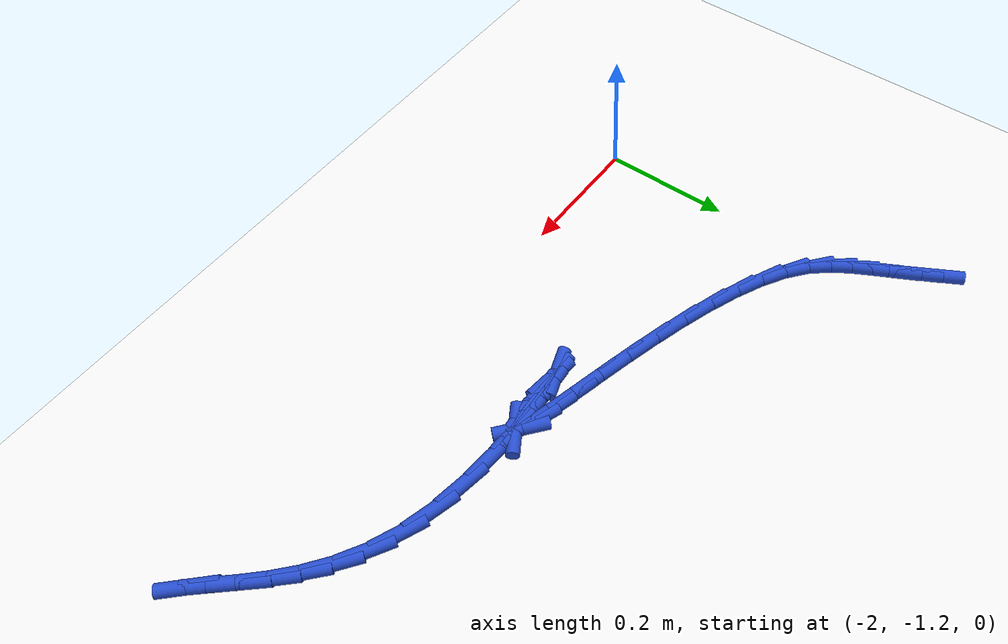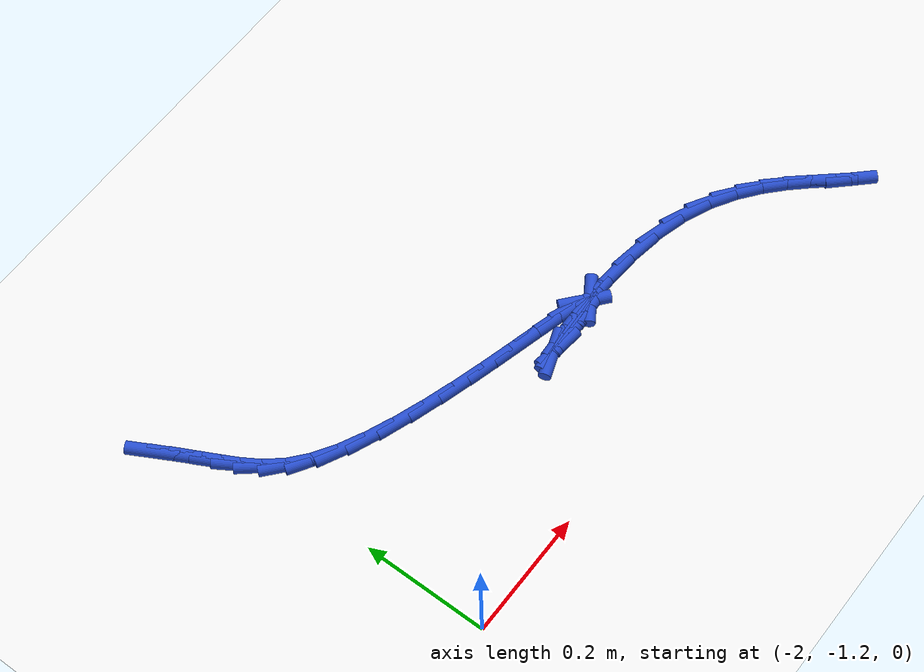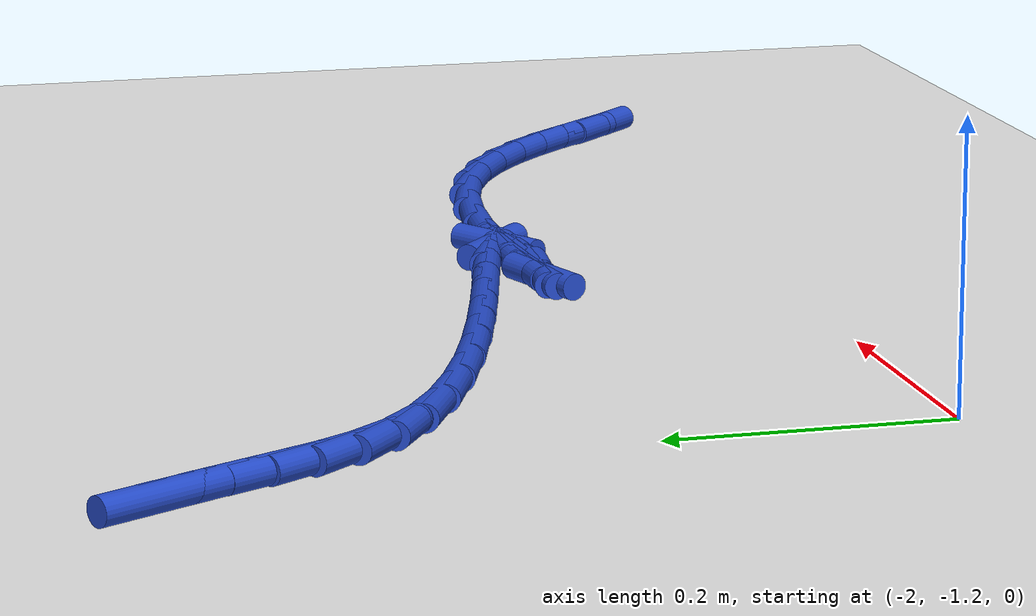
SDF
<sdf version="1.6">
 <world name="default">
  <model name="ground_plane">
   <static>1</static>
   <link name="link">
    <collision name="collision">
     <geometry><plane><normal>0 0 1</normal><size>100 100</size></plane></geometry>
     <surface><friction><ode><mu>100</mu><mu2>50</mu2></ode></friction></surface>
    </collision>
    <visual name="visual">
     <cast_shadows>0</cast_shadows>
     <geometry><plane><normal>0 0 1</normal><size>100 100</size></plane></geometry>
     <material>
      <script><uri>file://media/materials/scripts/gazebo.material</uri><name>Gazebo/WhiteGlow</name></script>
     </material>
    </visual>
   </link>
  </model>
  <model name="line">
   <link name="link_139">
    <pose>-2.0698029384900893 -0.6654449189479454 0.01 0 1.57 -1.0803497767880526</pose>
    <collision name="collision">
     <geometry><cylinder><radius>0.01</radius><length>0.08</length></cylinder></geometry>
    </collision>
    <visual name="visual">
     <material>
      <script><name>Gazebo/Blue</name><uri>file://media/materials/scripts/gazebo.material</uri></script>
     </material>
     <geometry><cylinder><radius>0.01</radius><length>0.08</length></cylinder></geometry>
    </visual>
   </link>
   <link name="link_140">
    <pose>-2.054865075860134 -0.6934204416251377 0.01 0 1.57 -1.0900580672086133</pose>
    <collision name="collision">
     <geometry><cylinder><radius>0.01</radius><length>0.08</length></cylinder></geometry>
    </collision>
    <visual name="visual">
     <material>
      <script><name>Gazebo/Blue</name><uri>file://media/materials/scripts/gazebo.material</uri></script>
     </material>
     <geometry><cylinder><radius>0.01</radius><length>0.08</length></cylinder></geometry>
    </visual>
   </link>
   <link name="link_141">
    <pose>-2.040311194592604 -0.7213255198770969 0.01 0 1.57 -1.1029298830065584</pose>
    <collision name="collision">
     <geometry><cylinder><radius>0.01</radius><length>0.08</length></cylinder></geometry>
    </collision>
    <visual name="visual">
     <material>
      <script><name>Gazebo/Blue</name><uri>file://media/materials/scripts/gazebo.material</uri></script>
     </material>
     <geometry><cylinder><radius>0.01</radius><length>0.08</length></cylinder></geometry>
    </visual>
   </link>
   <link name="link_142">
    <pose>-2.0262279021502865 -0.7491975132593244 0.01 0 1.57 -1.0913267215518248</pose>
    <collision name="collision">
     <geometry><cylinder><radius>0.01</radius><length>0.08</length></cylinder></geometry>
    </collision>
    <visual name="visual">
     <material>
      <script><name>Gazebo/Blue</name><uri>file://media/materials/scripts/gazebo.material</uri></script>
     </material>
     <geometry><cylinder><radius>0.01</radius><length>0.08</length></cylinder></geometry>
    </visual>
   </link>
   <link name="link_143">
    <pose>-2.011832112746434 -0.7768850845186759 0.01 0 1.57 -1.0151110667225822</pose>
    <collision name="collision">
     <geometry><cylinder><radius>0.01</radius><length>0.08</length></cylinder></geometry>
    </collision>
    <visual name="visual">
     <material>
      <script><name>Gazebo/Blue</name><uri>file://media/materials/scripts/gazebo.material</uri></script>
     </material>
     <geometry><cylinder><radius>0.01</radius><length>0.08</length></cylinder></geometry>
    </visual>
   </link>
   <link name="link_144">
    <pose>-1.9950251197276583 -0.8039514469529594 0.01 0 1.57 -0.88124678732448</pose>
    <collision name="collision">
     <geometry><cylinder><radius>0.01</radius><length>0.08</length></cylinder></geometry>
    </collision>
    <visual name="visual">
     <material>
      <script><name>Gazebo/Blue</name><uri>file://media/materials/scripts/gazebo.material</uri></script>
     </material>
     <geometry><cylinder><radius>0.01</radius><length>0.08</length></cylinder></geometry>
    </visual>
   </link>
   <link name="link_145">
    <pose>-1.9735987490649582 -0.8299360627909248 0.01 0 1.57 -0.7135313456483213</pose>
    <collision name="collision">
     <geometry><cylinder><radius>0.01</radius><length>0.08</length></cylinder></geometry>
    </collision>
    <visual name="visual">
     <material>
      <script><name>Gazebo/Blue</name><uri>file://media/materials/scripts/gazebo.material</uri></script>
     </material>
     <geometry><cylinder><radius>0.01</radius><length>0.08</length></cylinder></geometry>
    </visual>
   </link>
   <link name="link_146">
    <pose>-1.9453616587670233 -0.8543805631895226 0.01 0 1.57 -0.5626125583309765</pose>
    <collision name="collision">
     <geometry><cylinder><radius>0.01</radius><length>0.08</length></cylinder></geometry>
    </collision>
    <visual name="visual">
     <material>
      <script><name>Gazebo/Blue</name><uri>file://media/materials/scripts/gazebo.material</uri></script>
     </material>
     <geometry><cylinder><radius>0.01</radius><length>0.08</length></cylinder></geometry>
    </visual>
   </link>
   <link name="link_147">
    <pose>-1.9094877096200553 -0.8770024954281223 0.01 0 1.57 -0.46033689835174857</pose>
    <collision name="collision">
     <geometry><cylinder><radius>0.01</radius><length>0.08</length></cylinder></geometry>
    </collision>
    <visual name="visual">
     <material>
      <script><name>Gazebo/Blue</name><uri>file://media/materials/scripts/gazebo.material</uri></script>
     </material>
     <geometry><cylinder><radius>0.01</radius><length>0.08</length></cylinder></geometry>
    </visual>
   </link>
   <link name="link_148">
    <pose>-1.8675012045326556 -0.8978222780305356 0.01 0 1.57 -0.39034498056059747</pose>
    <collision name="collision">
     <geometry><cylinder><radius>0.01</radius><length>0.08</length></cylinder></geometry>
    </collision>
    <visual name="visual">
     <material>
      <script><name>Gazebo/Blue</name><uri>file://media/materials/scripts/gazebo.material</uri></script>
     </material>
     <geometry><cylinder><radius>0.01</radius><length>0.08</length></cylinder></geometry>
    </visual>
   </link>
   <link name="link_149">
    <pose>-1.821158748984036 -0.9168902633649263 0.01 0 1.57 -0.3409806790470598</pose>
    <collision name="collision">
     <geometry><cylinder><radius>0.01</radius><length>0.08</length></cylinder></geometry>
    </collision>
    <visual name="visual">
     <material>
      <script><name>Gazebo/Blue</name><uri>file://media/materials/scripts/gazebo.material</uri></script>
     </material>
     <geometry><cylinder><radius>0.01</radius><length>0.08</length></cylinder></geometry>
    </visual>
   </link>
   <link name="link_150">
    <pose>-1.7722169484534103 -0.9342568037994589 0.01 0 1.57 -0.30576953650660055</pose>
    <collision name="collision">
     <geometry><cylinder><radius>0.01</radius><length>0.08</length></cylinder></geometry>
    </collision>
    <visual name="visual">
     <material>
      <script><name>Gazebo/Blue</name><uri>file://media/materials/scripts/gazebo.material</uri></script>
     </material>
     <geometry><cylinder><radius>0.01</radius><length>0.08</length></cylinder></geometry>
    </visual>
   </link>
   <link name="link_151">
    <pose>-1.7224324084199911 -0.9499722517022965 0.01 0 1.57 -0.281166345391388</pose>
    <collision name="collision">
     <geometry><cylinder><radius>0.01</radius><length>0.08</length></cylinder></geometry>
    </collision>
    <visual name="visual">
     <material>
      <script><name>Gazebo/Blue</name><uri>file://media/materials/scripts/gazebo.material</uri></script>
     </material>
     <geometry><cylinder><radius>0.01</radius><length>0.08</length></cylinder></geometry>
    </visual>
   </link>
   <link name="link_152">
    <pose>-1.673561734362992 -0.9640869594416037 0.01 0 1.57 -0.26553196888436553</pose>
    <collision name="collision">
     <geometry><cylinder><radius>0.01</radius><length>0.08</length></cylinder></geometry>
    </collision>
    <visual name="visual">
     <material>
      <script><name>Gazebo/Blue</name><uri>file://media/materials/scripts/gazebo.material</uri></script>
     </material>
     <geometry><cylinder><radius>0.01</radius><length>0.08</length></cylinder></geometry>
    </visual>
   </link>
   <link name="link_153">
    <pose>-1.6273615317616261 -0.9766512793855443 0.01 0 1.57 -0.25892060433528985</pose>
    <collision name="collision">
     <geometry><cylinder><radius>0.01</radius><length>0.08</length></cylinder></geometry>
    </collision>
    <visual name="visual">
     <material>
      <script><name>Gazebo/Blue</name><uri>file://media/materials/scripts/gazebo.material</uri></script>
     </material>
     <geometry><cylinder><radius>0.01</radius><length>0.08</length></cylinder></geometry>
    </visual>
   </link>
   <link name="link_154">
    <pose>-1.5855884060951067 -0.9877155639022817 0.01 0 1.57 -0.26385460582374554</pose>
    <collision name="collision">
     <geometry><cylinder><radius>0.01</radius><length>0.08</length></cylinder></geometry>
    </collision>
    <visual name="visual">
     <material>
      <script><name>Gazebo/Blue</name><uri>file://media/materials/scripts/gazebo.material</uri></script>
     </material>
     <geometry><cylinder><radius>0.01</radius><length>0.08</length></cylinder></geometry>
    </visual>
   </link>
   <link name="link_155">
    <pose>-1.5499989628426458 -0.9973301653599804 0.01 0 1.57 -0.28881761165267084</pose>
    <collision name="collision">
     <geometry><cylinder><radius>0.01</radius><length>0.08</length></cylinder></geometry>
    </collision>
    <visual name="visual">
     <material>
      <script><name>Gazebo/Blue</name><uri>file://media/materials/scripts/gazebo.material</uri></script>
     </material>
     <geometry><cylinder><radius>0.01</radius><length>0.08</length></cylinder></geometry>
    </visual>
   </link>
   <link name="link_156">
    <pose>-1.5223498074834587 -1.0055454361268037 0.01 0 1.57 -0.36530798659268315</pose>
    <collision name="collision">
     <geometry><cylinder><radius>0.01</radius><length>0.08</length></cylinder></geometry>
    </collision>
    <visual name="visual">
     <material>
      <script><name>Gazebo/Blue</name><uri>file://media/materials/scripts/gazebo.material</uri></script>
     </material>
     <geometry><cylinder><radius>0.01</radius><length>0.08</length></cylinder></geometry>
    </visual>
   </link>
   <link name="link_157">
    <pose>-1.5043975454967573 -1.0124117285709155 0.01 0 1.57 -0.7083865507063272</pose>
    <collision name="collision">
     <geometry><cylinder><radius>0.01</radius><length>0.08</length></cylinder></geometry>
    </collision>
    <visual name="visual">
     <material>
      <script><name>Gazebo/Blue</name><uri>file://media/materials/scripts/gazebo.material</uri></script>
     </material>
     <geometry><cylinder><radius>0.01</radius><length>0.08</length></cylinder></geometry>
    </visual>
   </link>
   <link name="link_158">
    <pose>-1.4978987823617556 -1.01797939506048 0.01 0 1.57 0.5718601640422504</pose>
    <collision name="collision">
     <geometry><cylinder><radius>0.01</radius><length>0.08</length></cylinder></geometry>
    </collision>
    <visual name="visual">
     <material>
      <script><name>Gazebo/Blue</name><uri>file://media/materials/scripts/gazebo.material</uri></script>
     </material>
     <geometry><cylinder><radius>0.01</radius><length>0.08</length></cylinder></geometry>
    </visual>
   </link>
   <link name="link_159">
    <pose>-1.5046101235576654 -1.0222987879636607 0.01 0 1.57 0.14301132207805295</pose>
    <collision name="collision">
     <geometry><cylinder><radius>0.01</radius><length>0.08</length></cylinder></geometry>
    </collision>
    <visual name="visual">
     <material>
      <script><name>Gazebo/Blue</name><uri>file://media/materials/scripts/gazebo.material</uri></script>
     </material>
     <geometry><cylinder><radius>0.01</radius><length>0.08</length></cylinder></geometry>
    </visual>
   </link>
   <link name="link_160">
    <pose>-1.5262878085826423 -1.0254202517375572 0.01 0 1.57 0.05483153367055233</pose>
    <collision name="collision">
     <geometry><cylinder><radius>0.01</radius><length>0.08</length></cylinder></geometry>
    </collision>
    <visual name="visual">
     <material>
      <script><name>Gazebo/Blue</name><uri>file://media/materials/scripts/gazebo.material</uri></script>
     </material>
     <geometry><cylinder><radius>0.01</radius><length>0.08</length></cylinder></geometry>
    </visual>
   </link>
   <link name="link_161">
    <pose>-1.5606671230768066 -1.0273072137055037 0.01 0 1.57 0.010176572668209241</pose>
    <collision name="collision">
     <geometry><cylinder><radius>0.01</radius><length>0.08</length></cylinder></geometry>
    </collision>
    <visual name="visual">
     <material>
      <script><name>Gazebo/Blue</name><uri>file://media/materials/scripts/gazebo.material</uri></script>
     </material>
     <geometry><cylinder><radius>0.01</radius><length>0.08</length></cylinder></geometry>
    </visual>
   </link>
   <link name="link_162">
    <pose>-1.5915140414072486 -1.027621140448585 0.01 0 1.57 -0.11970561620772388</pose>
    <collision name="collision">
     <geometry><cylinder><radius>0.01</radius><length>0.08</length></cylinder></geometry>
    </collision>
    <visual name="visual">
     <material>
      <script><name>Gazebo/Blue</name><uri>file://media/materials/scripts/gazebo.material</uri></script>
     </material>
     <geometry><cylinder><radius>0.01</radius><length>0.08</length></cylinder></geometry>
    </visual>
   </link>
   <link name="link_163">
    <pose>-1.6035186521800606 -1.026177217655421 0.01 0 1.57 0.34562499175135225</pose>
    <collision name="collision">
     <geometry><cylinder><radius>0.01</radius><length>0.08</length></cylinder></geometry>
    </collision>
    <visual name="visual">
     <material>
      <script><name>Gazebo/Blue</name><uri>file://media/materials/scripts/gazebo.material</uri></script>
     </material>
     <geometry><cylinder><radius>0.01</radius><length>0.08</length></cylinder></geometry>
    </visual>
   </link>
   <link name="link_164">
    <pose>-1.5964317735418663 -1.0236253856719033 0.01 0 1.57 0.12244470842751536</pose>
    <collision name="collision">
     <geometry><cylinder><radius>0.01</radius><length>0.08</length></cylinder></geometry>
    </collision>
    <visual name="visual">
     <material>
      <script><name>Gazebo/Blue</name><uri>file://media/materials/scripts/gazebo.material</uri></script>
     </material>
     <geometry><cylinder><radius>0.01</radius><length>0.08</length></cylinder></geometry>
    </visual>
   </link>
   <link name="link_165">
    <pose>-1.5735879330510956 -1.0208142152033455 0.01 0 1.57 0.06292145084838228</pose>
    <collision name="collision">
     <geometry><cylinder><radius>0.01</radius><length>0.08</length></cylinder></geometry>
    </collision>
    <visual name="visual">
     <material>
      <script><name>Gazebo/Blue</name><uri>file://media/materials/scripts/gazebo.material</uri></script>
     </material>
     <geometry><cylinder><radius>0.01</radius><length>0.08</length></cylinder></geometry>
    </visual>
   </link>
   <link name="link_166">
    <pose>-1.5383216582661787 -1.0185922769550613 0.01 0 1.57 0.01767710773918254</pose>
    <collision name="collision">
     <geometry><cylinder><radius>0.01</radius><length>0.08</length></cylinder></geometry>
    </collision>
    <visual name="visual">
     <material>
      <script><name>Gazebo/Blue</name><uri>file://media/materials/scripts/gazebo.material</uri></script>
     </material>
     <geometry><cylinder><radius>0.01</radius><length>0.08</length></cylinder></geometry>
    </visual>
   </link>
   <link name="link_167">
    <pose>-1.4939674767455466 -1.017808141632365 0.01 0 1.57 -0.02997129476841175</pose>
    <collision name="collision">
     <geometry><cylinder><radius>0.01</radius><length>0.08</length></cylinder></geometry>
    </collision>
    <visual name="visual">
     <material>
      <script><name>Gazebo/Blue</name><uri>file://media/materials/scripts/gazebo.material</uri></script>
     </material>
     <geometry><cylinder><radius>0.01</radius><length>0.08</length></cylinder></geometry>
    </visual>
   </link>
   <link name="link_168">
    <pose>-1.4438599160476289 -1.0193103799405707 0.01 0 1.57 -0.08805458572259407</pose>
    <collision name="collision">
     <geometry><cylinder><radius>0.01</radius><length>0.08</length></cylinder></geometry>
    </collision>
    <visual name="visual">
     <material>
      <script><name>Gazebo/Blue</name><uri>file://media/materials/scripts/gazebo.material</uri></script>
     </material>
     <geometry><cylinder><radius>0.01</radius><length>0.08</length></cylinder></geometry>
    </visual>
   </link>
   <link name="link_169">
    <pose>-1.3913335037308567 -1.0239475625849925 0.01 0 1.57 -0.16550511800209752</pose>
    <collision name="collision">
     <geometry><cylinder><radius>0.01</radius><length>0.08</length></cylinder></geometry>
    </collision>
    <visual name="visual">
     <material>
      <script><name>Gazebo/Blue</name><uri>file://media/materials/scripts/gazebo.material</uri></script>
     </material>
     <geometry><cylinder><radius>0.01</radius><length>0.08</length></cylinder></geometry>
    </visual>
   </link>
   <link name="link_170">
    <pose>-1.339722767353659 -1.032568260270945 0.01 0 1.57 -0.2762205828855832</pose>
    <collision name="collision">
     <geometry><cylinder><radius>0.01</radius><length>0.08</length></cylinder></geometry>
    </collision>
    <visual name="visual">
     <material>
      <script><name>Gazebo/Blue</name><uri>file://media/materials/scripts/gazebo.material</uri></script>
     </material>
     <geometry><cylinder><radius>0.01</radius><length>0.08</length></cylinder></geometry>
    </visual>
   </link>
   <link name="link_171">
    <pose>-1.292327047201159 -1.0460033743868362 0.01 0 1.57 -0.4149137010749201</pose>
    <collision name="collision">
     <geometry><cylinder><radius>0.01</radius><length>0.08</length></cylinder></geometry>
    </collision>
    <visual name="visual">
     <material>
      <script><name>Gazebo/Blue</name><uri>file://media/materials/scripts/gazebo.material</uri></script>
     </material>
     <geometry><cylinder><radius>0.01</radius><length>0.08</length></cylinder></geometry>
    </visual>
   </link>
   <link name="link_172">
    <pose>-1.2508403323841701 -1.064277677969145 0.01 0 1.57 -0.5474251966863423</pose>
    <collision name="collision">
     <geometry><cylinder><radius>0.01</radius><length>0.08</length></cylinder></geometry>
    </collision>
    <visual name="visual">
     <material>
      <script><name>Gazebo/Blue</name><uri>file://media/materials/scripts/gazebo.material</uri></script>
     </material>
     <geometry><cylinder><radius>0.01</radius><length>0.08</length></cylinder></geometry>
    </visual>
   </link>
   <link name="link_173">
    <pose>-1.2147223869227426 -1.0862940261717773 0.01 0 1.57 -0.6632872201543196</pose>
    <collision name="collision">
     <geometry><cylinder><radius>0.01</radius><length>0.08</length></cylinder></geometry>
    </collision>
    <visual name="visual">
     <material>
      <script><name>Gazebo/Blue</name><uri>file://media/materials/scripts/gazebo.material</uri></script>
     </material>
     <geometry><cylinder><radius>0.01</radius><length>0.08</length></cylinder></geometry>
    </visual>
   </link>
   <link name="link_174">
    <pose>-1.1832676888846714 -1.1108722756780105 0.01 0 1.57 -0.7566546437611219</pose>
    <collision name="collision">
     <geometry><cylinder><radius>0.01</radius><length>0.08</length></cylinder></geometry>
    </collision>
    <visual name="visual">
     <material>
      <script><name>Gazebo/Blue</name><uri>file://media/materials/scripts/gazebo.material</uri></script>
     </material>
     <geometry><cylinder><radius>0.01</radius><length>0.08</length></cylinder></geometry>
    </visual>
   </link>
   <link name="link_175">
    <pose>-1.155770716337752 -1.1368322831711228 0.01 0 1.57 -0.8234078270126909</pose>
    <collision name="collision">
     <geometry><cylinder><radius>0.01</radius><length>0.08</length></cylinder></geometry>
    </collision>
    <visual name="visual">
     <material>
      <script><name>Gazebo/Blue</name><uri>file://media/materials/scripts/gazebo.material</uri></script>
     </material>
     <geometry><cylinder><radius>0.01</radius><length>0.08</length></cylinder></geometry>
    </visual>
   </link>
   <link name="link_176">
    <pose>-1.131525947349779 -1.1629939053343914 0.01 0 1.57 -0.8595986831403948</pose>
    <collision name="collision">
     <geometry><cylinder><radius>0.01</radius><length>0.08</length></cylinder></geometry>
    </collision>
    <visual name="visual">
     <material>
      <script><name>Gazebo/Blue</name><uri>file://media/materials/scripts/gazebo.material</uri></script>
     </material>
     <geometry><cylinder><radius>0.01</radius><length>0.08</length></cylinder></geometry>
    </visual>
   </link>
   <link name="link_177">
    <pose>-1.1098278599885476 -1.1881769988510946 0.01 0 1.57 -0.8591307265183309</pose>
    <collision name="collision">
     <geometry><cylinder><radius>0.01</radius><length>0.08</length></cylinder></geometry>
    </collision>
    <visual name="visual">
     <material>
      <script><name>Gazebo/Blue</name><uri>file://media/materials/scripts/gazebo.material</uri></script>
     </material>
     <geometry><cylinder><radius>0.01</radius><length>0.08</length></cylinder></geometry>
    </visual>
   </link>
   <link name="link_178">
    <pose>-1.0899709323218536 -1.2112014204045094 0.01 0 1.57 -0.8105007857000184</pose>
    <collision name="collision">
     <geometry><cylinder><radius>0.01</radius><length>0.08</length></cylinder></geometry>
    </collision>
    <visual name="visual">
     <material>
      <script><name>Gazebo/Blue</name><uri>file://media/materials/scripts/gazebo.material</uri></script>
     </material>
     <geometry><cylinder><radius>0.01</radius><length>0.08</length></cylinder></geometry>
    </visual>
   </link>
  </model>
 </world>
</sdf>
